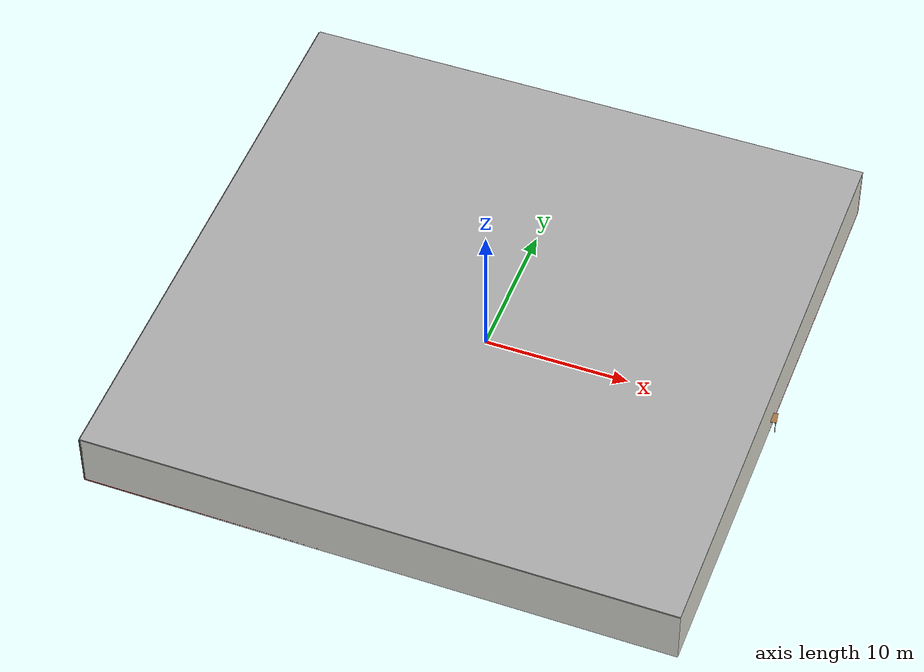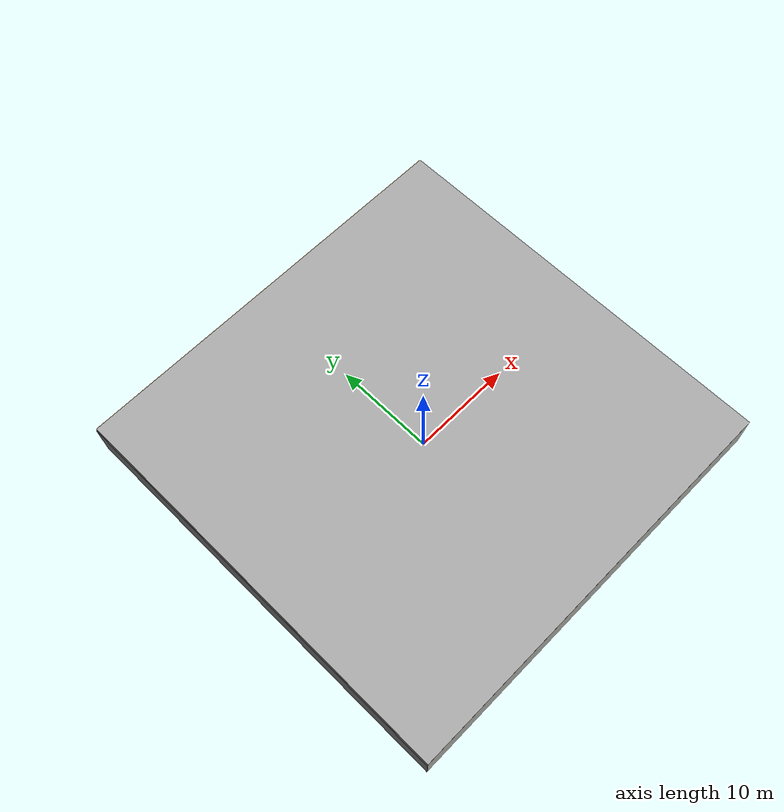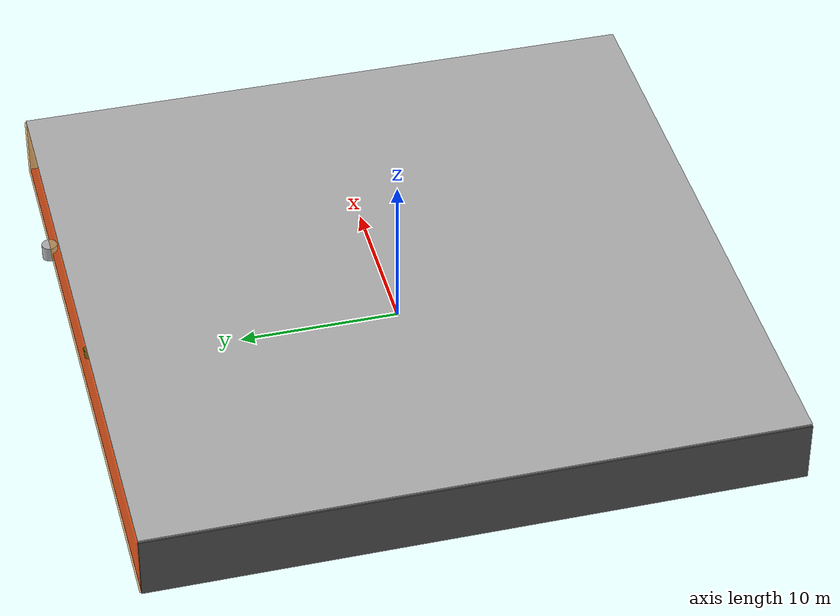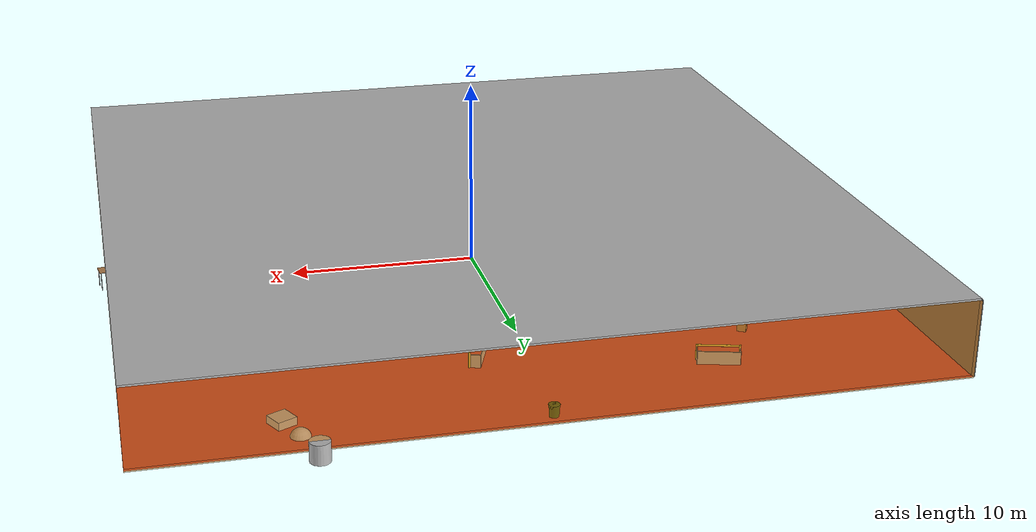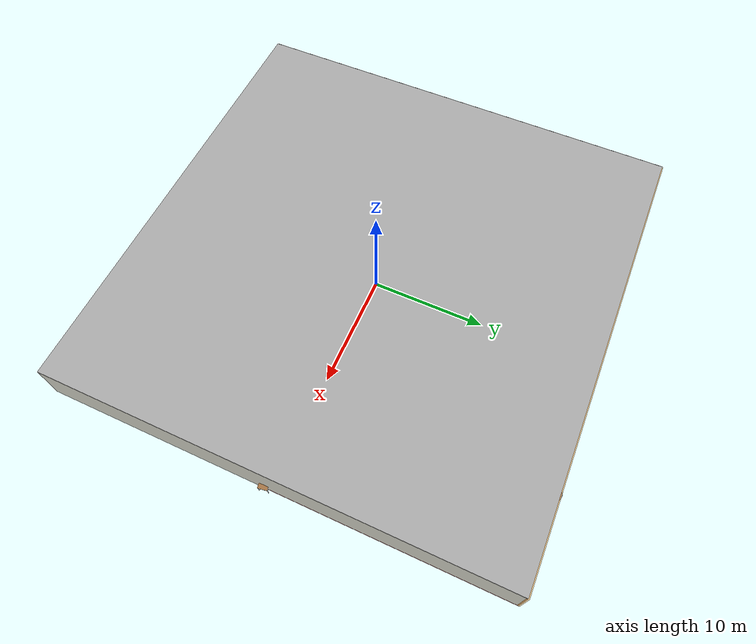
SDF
<sdf version="1.4">
 <world name="default">
  <physics type="ode">
   <max_step_size>0.001</max_step_size>
   <real_time_factor>1</real_time_factor>
   <real_time_update_rate>1000</real_time_update_rate>
   <gravity>0 0 -9.8</gravity>
  </physics>
  <scene><ambient>0.4 0.4 0.4 1</ambient><background>0.7 0.7 0.7 1</background><shadows>1</shadows></scene>
  <model name="Surrounding">
   <static>1</static>
   <link name="Ceiling">
    <collision name="Ceiling_Collision"><geometry><box><size>40 40 0.1</size></box></geometry></collision>
    <visual name="Ceiling_Visual">
     <geometry><box><size>40 40 0.1</size></box></geometry>
     <material>
      <script><uri>file://media/materials/scripts/gazebo.material</uri><name>Gazebo/PioneerBody</name></script>
     </material>
    </visual>
    <pose>0 0 4.05 0 0 0</pose>
   </link>
   <link name="Wall_South">
    <collision name="Wall_South_Collision">
     <geometry><box><size>40 0 4</size></box></geometry>
     <pose>0 0 2 0 -0 0</pose>
    </collision>
    <visual name="Wall_South_Visual">
     <pose>0 0 2 0 -0 0</pose>
     <geometry><box><size>40 0 4</size></box></geometry>
     <material>
      <script><uri>file://media/materials/scripts/gazebo.material</uri><name>Gazebo/CeilingTiled</name></script>
     </material>
    </visual>
    <velocity_decay><linear>0</linear><angular>0</angular></velocity_decay>
    <pose>0 -20 0 0 -0 0</pose>
   </link>
   <link name="Wall_East">
    <collision name="Wall_21_Collision">
     <geometry><box><size>40 0 4</size></box></geometry>
     <pose>0 0 2 0 -0 0</pose>
    </collision>
    <visual name="Wall_21_Visual">
     <pose>0 0 2 0 -0 0</pose>
     <geometry><box><size>40 0 4</size></box></geometry>
     <material>
      <script><uri>file://media/materials/scripts/gazebo.material</uri><name>Gazebo/PaintedWall</name></script>
     </material>
    </visual>
    <velocity_decay><linear>0</linear><angular>0</angular></velocity_decay>
    <pose>20 0 0 0 -0 1.5708</pose>
   </link>
   <link name="Wall_North">
    <collision name="Wall_22_Collision">
     <geometry><box><size>40 0.2 4</size></box></geometry>
     <pose>0 0 2 0 -0 0</pose>
    </collision>
    <visual name="Wall_22_Visual">
     <pose>0 0 2 0 -0 0</pose>
     <geometry><box><size>40 0.2 4</size></box></geometry>
     <material>
      <script>
       <uri>file://media/materials/scripts/gazebo.material</uri>
       <name>Gazebo/OrangeTransparent</name>
      </script>
     </material>
    </visual>
    <velocity_decay><linear>0</linear><angular>0</angular></velocity_decay>
    <pose>0 20 0 0 -0 0</pose>
   </link>
   <link name="Wall_West">
    <collision name="Wall_23_Collision">
     <geometry><box><size>40 0.2 4</size></box></geometry>
     <pose>0 0 2 0 -0 0</pose>
    </collision>
    <visual name="Wall_23_Visual">
     <pose>0 0 2 0 -0 0</pose>
     <geometry><box><size>40 0.2 4</size></box></geometry>
     <material>
      <script><uri>file://media/materials/scripts/gazebo.material</uri><name>Gazebo/Road</name></script>
     </material>
    </visual>
    <velocity_decay><linear>0</linear><angular>0</angular></velocity_decay>
    <pose>-20 0 0 0 0 -1.5708</pose>
   </link>
   <link name="Ground_link">
    <collision name="collision">
     <pose>0 0 .05 0 -0 0</pose>
     <geometry><box><size>40 40 0.1</size></box></geometry>
    </collision>
    <visual name="visual">
     <pose>0 0 .05 0 -0 0</pose>
     <geometry><box><size>40 40 0.1</size></box></geometry>
     <material>
      <script><uri>file://media/materials/scripts/gazebo.material</uri><name>Gazebo/RedBright</name></script>
     </material>
    </visual>
   </link>
   <static>1</static>
  </model>
  <spherical_coordinates>
   <surface_model>EARTH_WGS84</surface_model>
   <latitude_deg>0</latitude_deg>
   <longitude_deg>0</longitude_deg>
   <elevation>0</elevation>
   <heading_deg>0</heading_deg>
  </spherical_coordinates>
  <light name="lightball_0" type="diffuse">
   <diffuse>0.8 0.8 0.8 1</diffuse>
   <specular>0.2 0.2 0.2 1</specular>
   <attenuation>
    <range>100</range>
    <constant>0.7</constant>
    <linear>0.01</linear>
    <quadratic>0.001</quadratic>
   </attenuation>
   <direction>-0.5 0.1 -0.9</direction>
   <pose>6.90302601546 0.268681291076 2.10294904606 0 0 0</pose>
  </light>
  <light name="lightball_1" type="diffuse">
   <diffuse>0.8 0.8 0.8 1</diffuse>
   <specular>0.2 0.2 0.2 1</specular>
   <attenuation>
    <range>100</range>
    <constant>0.7</constant>
    <linear>0.01</linear>
    <quadratic>0.001</quadratic>
   </attenuation>
   <direction>-0.5 0.1 -0.9</direction>
   <pose>18.0675532554 -13.8527912707 2.45104531143 0 0 0</pose>
  </light>
  <light name="lightball_2" type="diffuse">
   <diffuse>0.8 0.8 0.8 1</diffuse>
   <specular>0.2 0.2 0.2 1</specular>
   <attenuation>
    <range>100</range>
    <constant>0.7</constant>
    <linear>0.01</linear>
    <quadratic>0.001</quadratic>
   </attenuation>
   <direction>-0.5 0.1 -0.9</direction>
   <pose>-10.1216145704 5.33745196965 0.794594223808 0 0 0</pose>
  </light>
  <light name="lightball_3" type="diffuse">
   <diffuse>0.8 0.8 0.8 1</diffuse>
   <specular>0.2 0.2 0.2 1</specular>
   <attenuation>
    <range>100</range>
    <constant>0.7</constant>
    <linear>0.01</linear>
    <quadratic>0.001</quadratic>
   </attenuation>
   <direction>-0.5 0.1 -0.9</direction>
   <pose>-5.10056853187 14.0714075193 2.06421126031 0 0 0</pose>
  </light>
  <include>
   <uri>model://textured_shapes</uri>
   <pose>-17.6273782774 -5.43340216499 0 0 0 1.14456175996</pose>
  </include>
  <include><uri>model://cabinet</uri><pose>-11.4259889183 -17.8381955516 0 0 0 1.17141202596</pose></include>
  <include><uri>model://cabinet</uri><pose>-10.3510109013 -8.38585978675 0 0 0 1.56720835756</pose></include>
  <include>
   <uri>model://robocup_3Dsim_goal</uri>
   <pose>-10.8478114854 -2.94415419099 0 0 0 1.85478964729</pose>
  </include>
  <include><uri>model://cabinet</uri><pose>-11.1275075875 12.6096214925 0 0 0 2.63126083555</pose></include>
  <include><uri>model://cabinet</uri><pose>-9.03735682367 -17.1842546276 0 0 0 1.88409635895</pose></include>
  <include><uri>model://table</uri><pose>-8.66377700152 -0.574032934305 0 0 0 1.52514101652</pose></include>
  <include>
   <uri>model://robocup_3Dsim_goal</uri>
   <pose>-8.70523200314 15.6156491218 0 0 0 1.2908593346</pose>
  </include>
  <include><uri>model://cabinet</uri><pose>-5.39964819607 1.53182371967 0 0 0 0.0154920650764</pose></include>
  <include>
   <uri>model://construction_cone</uri>
   <pose>-5.01574363057 3.6656004569 0 0 0 2.3988038471</pose>
  </include>
  <include>
   <uri>model://first_2015_trash_can</uri>
   <pose>0.655273819259 19.4804180351 0 0 0 2.39097271378</pose>
  </include>
  <include>
   <uri>model://first_2015_trash_can</uri>
   <pose>3.83444711945 -18.6964137745 0 0 0 2.56759915423</pose>
  </include>
  <include>
   <uri>model://first_2015_trash_can</uri>
   <pose>4.02740754094 -1.94022697744 0 0 0 2.36725867588</pose>
  </include>
  <include><uri>model://table</uri><pose>3.7089262672 9.37193265248 0 0 0 1.23477088049</pose></include>
  <include>
   <uri>model://robocup_3Dsim_goal</uri>
   <pose>2.91127370841 12.723505101 0 0 0 2.7778035221</pose>
  </include>
  <include>
   <uri>model://first_2015_trash_can</uri>
   <pose>10.6763732516 -14.656851464 0 0 0 2.58550364697</pose>
  </include>
  <include><uri>model://cabinet</uri><pose>9.89362429812 -6.69949835405 0 0 0 0.323433682492</pose></include>
  <include><uri>model://cabinet</uri><pose>13.0155854966 -2.92849488834 0 0 0 0.323305189479</pose></include>
  <include><uri>model://cabinet</uri><pose>12.2579462944 1.59613254094 0 0 0 1.01055414885</pose></include>
  <include>
   <uri>model://textured_shapes</uri>
   <pose>12.1653709772 18.7624057919 0 0 0 0.463122305695</pose>
  </include>
  <include><uri>model://cabinet</uri><pose>19.672492148 -18.0867366941 0 0 0 2.14816455318</pose></include>
  <include><uri>model://table</uri><pose>19.6162911638 -0.509696823986 0 0 0 0.150621681691</pose></include>
 </world>
</sdf>

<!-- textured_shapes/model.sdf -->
<sdf version="1.6">
  <model name="textured_shapes">
    <pose>0 0 0.5 0 0 0</pose>
    <link name="box">
      <pose>0 -1.5 0 0 0 0</pose>
      <collision name="collision">
        <geometry>
          <box>
            <size>1 1 1</size>
          </box>
        </geometry>
      </collision>
      <visual name="visual">
        <geometry>
          <box>
            <size>1 1 1</size>
          </box>
        </geometry>
        <material>
          <script>
            <uri>model://../model_source/models/textured_shapes/materials/scripts</uri>
            <uri>model://../model_source/models/textured_shapes/materials/textures</uri>
            <name>TexturedShape/Squares</name>
          </script>
        </material>
      </visual>
    </link>
    <link name="sphere">
      <collision name="collision">
        <geometry>
          <sphere>
            <radius>0.5</radius>
          </sphere>
        </geometry>
      </collision>
      <visual name="visual">
        <geometry>
          <sphere>
            <radius>0.5</radius>
          </sphere>
        </geometry>
        <material>
          <script>
            <uri>model://../model_source/models/textured_shapes/materials/scripts</uri>
            <uri>model://../model_source/models/textured_shapes/materials/textures</uri>
            <name>TexturedShape/Squares</name>
          </script>
        </material>
      </visual>
    </link>
    <link name="cylinder">
      <pose>0 1.5 0 0 0 0</pose>
      <collision name="collision">
        <geometry>
          <cylinder>
            <radius>0.5</radius>
            <length>1</length>
          </cylinder>
        </geometry>
      </collision>
      <visual name="visual">
        <geometry>
          <cylinder>
            <radius>0.5</radius>
            <length>1</length>
          </cylinder>
        </geometry>
        <material>
          <script>
            <uri>model://../model_source/models/textured_shapes/materials/scripts</uri>
            <uri>model://../model_source/models/textured_shapes/materials/textures</uri>
            <name>TexturedShape/Squares</name>
          </script>
        </material>
      </visual>
    </link>
  </model>
</sdf>

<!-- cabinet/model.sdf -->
<sdf version="1.5">
  <model name="cabinet">
    <static>true</static>
    <link name="cabinet_bottom_plate">
      <inertial>
        <pose>0 0 -1 0 0 0</pose>
        <inertia>
          <ixx>2.050000</ixx>
          <ixy>0</ixy>
          <ixz>0</ixz>
          <iyy>2.050000</iyy>
          <iyz>0</iyz>
          <izz>2.050000</izz>
        </inertia>
        <mass>25.000000</mass>
      </inertial>
      <collision name="cabinet_bottom_plate_geom">
        <pose>0 0 0.010000 0 0 0</pose>
        <geometry>
          <box>
            <size>0.450000 0.450000 0.020000</size>
          </box>
        </geometry>
      </collision>
      <visual name="cabinet_bottom_plate_geom_visual">
        <pose>0 0 0.010000 0 0 0</pose>
        <geometry>
          <box>
            <size>0.450000 0.450000 0.020000</size>
          </box>
        </geometry>
        <material>
          <script>
            <uri>model://media/materials/scripts/gazebo.material</uri>
            <name>Gazebo/Wood</name>
          </script>
        </material>
      </visual>
      <collision name="cabinet_bottom_plate_geom_cabinet_back_plate">
        <pose>0.235000 0 0.510000 0 0 0</pose>
        <geometry>
          <box>
            <size>0.020000 0.450000 1.020000</size>
          </box>
        </geometry>
      </collision>
      <visual name="cabinet_bottom_plate_geom_cabinet_back_plate_visual">
        <pose>0.235000 0 0.510000 0 0 0</pose>
        <geometry>
          <box>
            <size>0.020000 0.450000 1.020000</size>
          </box>
        </geometry>
        <material>
          <script>
            <uri>model://media/materials/scripts/gazebo.material</uri>
            <name>Gazebo/Wood</name>
          </script>
        </material>
      </visual>
      <collision name="cabinet_bottom_plate_geom_cabinet_left_plate">
        <pose>0 0.235000 0.510000 0 0 0</pose>
        <geometry>
          <box>
            <size>0.450000 0.020000 1.020000</size>
          </box>
        </geometry>
      </collision>
      <visual name="cabinet_bottom_plate_geom_cabinet_left_plate_visual">
        <pose>0 0.235000 0.510000 0 0 0</pose>
        <geometry>
          <box>
            <size>0.450000 0.020000 1.020000</size>
          </box>
        </geometry>
        <material>
          <script>
            <uri>model://media/materials/scripts/gazebo.material</uri>
            <name>Gazebo/Wood</name>
          </script>
        </material>
      </visual>
      <collision name="cabinet_bottom_plate_geom_cabinet_middle_plate">
        <pose>0 0 0.510000 0 0 0</pose>
        <geometry>
          <box>
            <size>0.450000 0.450000 0.020000</size>
          </box>
        </geometry>
      </collision>
      <visual name="cabinet_bottom_plate_geom_cabinet_middle_plate_visual">
        <pose>0 0 0.510000 0 0 0</pose>
        <geometry>
          <box>
            <size>0.450000 0.450000 0.020000</size>
          </box>
        </geometry>
        <material>
          <script>
            <uri>model://media/materials/scripts/gazebo.material</uri>
            <name>Gazebo/Wood</name>
          </script>
        </material>
      </visual>
      <collision name="cabinet_bottom_plate_geom_cabinet_right_plate">
        <pose>0 -0.235000 0.510000 0 0 0</pose>
        <geometry>
          <box>
            <size>0.450000 0.020000 1.020000</size>
          </box>
        </geometry>
      </collision>
      <visual name="cabinet_bottom_plate_geom_cabinet_right_plate_visual">
        <pose>0 -0.235000 0.510000 0 0 0</pose>
        <geometry>
          <box>
            <size>0.450000 0.020000 1.020000</size>
          </box>
        </geometry>
        <material>
          <script>
            <uri>model://media/materials/scripts/gazebo.material</uri>
            <name>Gazebo/Wood</name>
          </script>
        </material>
      </visual>
      <collision name="cabinet_bottom_plate_geom_cabinet_top_plate">
        <pose>0 0 1.010000 0 0 0</pose>
        <geometry>
          <box>
            <size>0.450000 0.450000 0.020000</size>
          </box>
        </geometry>
      </collision>
      <visual name="cabinet_bottom_plate_geom_cabinet_top_plate_visual">
        <pose>0 0 1.010000 0 0 0</pose>
        <geometry>
          <box>
            <size>0.450000 0.450000 0.020000</size>
          </box>
        </geometry>
        <material>
          <script>
            <uri>model://media/materials/scripts/gazebo.material</uri>
            <name>Gazebo/Wood</name>
          </script>
        </material>
      </visual>
    </link>
  </model>
</sdf>

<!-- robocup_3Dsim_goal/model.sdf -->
<sdf version="1.5">
  <model name="robocup_3d_goal">
    <static>true</static>
    <link name="left_post">
      <pose>0 1.05 0.45 0 0 0</pose>
      <collision name="collision">
        <geometry>
          <cylinder>
            <radius>0.05</radius>
            <length>0.9</length>
          </cylinder>
        </geometry>
      </collision>
      <visual name="visual">
        <geometry>
          <cylinder>
            <radius>0.05</radius>
            <length>0.9</length>
          </cylinder>
        </geometry>
        <material>
          <script>
            <uri>file://media/materials/scripts/gazebo.material</uri>
            <name>Gazebo/ZincYellow</name>
          </script>
        </material>
      </visual>
    </link>
    <link name="left_support_horiz_lower">
      <pose>0.30 1.05 0.01 0 0 0</pose>
      <collision name="collision">
        <geometry>
          <box>
            <size>0.50 0.02 0.02</size>
          </box>
        </geometry>
      </collision>
      <visual name="visual">
        <geometry>
          <box>
            <size>0.50 0.02 0.02</size>
          </box>
        </geometry>
        <material>
          <script>
            <uri>file://media/materials/scripts/gazebo.material</uri>
            <name>Gazebo/White</name>
          </script>
        </material>
      </visual>
    </link>
    <link name="left_support_horiz_upper">
      <pose>0.30 1.05 0.79 0 0 0</pose>
      <collision name="collision">
        <geometry>
          <box>
            <size>0.50 0.02 0.02</size>
          </box>
        </geometry>
      </collision>
      <visual name="visual">
        <geometry>
          <box>
            <size>0.50 0.02 0.02</size>
          </box>
        </geometry>
        <material>
          <script>
            <uri>file://media/materials/scripts/gazebo.material</uri>
            <name>Gazebo/White</name>
          </script>
        </material>
      </visual>
    </link>
    <link name="left_support_vertical">
      <pose>0.56 1.05 0.4 0 1.5708 0</pose>
      <collision name="collision">
        <geometry>
          <box>
            <size>0.80 0.02 0.02</size>
          </box>
        </geometry>
      </collision>
      <visual name="visual">
        <geometry>
          <box>
            <size>0.80 0.02 0.02</size>
          </box>
        </geometry>
        <material>
          <script>
            <uri>file://media/materials/scripts/gazebo.material</uri>
            <name>Gazebo/White</name>
          </script>
        </material>
      </visual>
    </link>
    <link name="right_support_horiz_lower">
      <pose>0.30 -1.05 0.01 0 0 0</pose>
      <collision name="collision">
        <geometry>
          <box>
            <size>0.50 0.02 0.02</size>
          </box>
        </geometry>
      </collision>
      <visual name="visual">
        <geometry>
          <box>
            <size>0.50 0.02 0.02</size>
          </box>
        </geometry>
        <material>
          <script>
            <uri>file://media/materials/scripts/gazebo.material</uri>
            <name>Gazebo/White</name>
          </script>
        </material>
      </visual>
    </link>
    <link name="right_support_horiz_upper">
      <pose>0.30 -1.05 0.79 0 0 0</pose>
      <collision name="collision">
        <geometry>
          <box>
            <size>0.50 0.02 0.02</size>
          </box>
        </geometry>
      </collision>
      <visual name="visual">
        <geometry>
          <box>
            <size>0.50 0.02 0.02</size>
          </box>
        </geometry>
        <material>
          <script>
            <uri>file://media/materials/scripts/gazebo.material</uri>
            <name>Gazebo/White</name>
          </script>
        </material>
      </visual>
    </link>
    <link name="right_support_vertical">
      <pose>0.56 -1.05 0.4 0 1.5708 0</pose>
      <collision name="collision">
        <geometry>
          <box>
            <size>0.80 0.02 0.02</size>
          </box>
        </geometry>
      </collision>
      <visual name="visual">
        <geometry>
          <box>
            <size>0.80 0.02 0.02</size>
          </box>
        </geometry>
        <material>
          <script>
            <uri>file://media/materials/scripts/gazebo.material</uri>
            <name>Gazebo/White</name>
          </script>
        </material>
      </visual>
    </link>
    <link name="center_support_horiz_lower">
      <pose>0.56 0 0.01 0 1.5708 0</pose>
      <collision name="collision">
        <geometry>
          <box>
            <size>0.02 2.08 0.02</size>
          </box>
        </geometry>
      </collision>
      <visual name="visual">
        <geometry>
          <box>
            <size>0.02 2.08 0.02</size>
          </box>
        </geometry>
        <material>
          <script>
            <uri>file://media/materials/scripts/gazebo.material</uri>
            <name>Gazebo/White</name>
          </script>
        </material>
      </visual>
    </link>
    <link name="center_support_horiz_upper">
      <pose>0.56 0 0.79 0 1.5708 0</pose>
      <collision name="collision">
        <geometry>
          <box>
            <size>0.02 2.08 0.02</size>
          </box>
        </geometry>
      </collision>
      <visual name="visual">
        <geometry>
          <box>
            <size>0.02 2.08 0.02</size>
          </box>
        </geometry>
        <material>
          <script>
            <uri>file://media/materials/scripts/gazebo.material</uri>
            <name>Gazebo/White</name>
          </script>
        </material>
      </visual>
    </link>
    <link name="right_post">
      <pose>0 -1.05 0.45 0 0 0</pose>
      <collision name="collision">
        <geometry>
          <cylinder>
            <radius>0.05</radius>
            <length>0.9</length>
          </cylinder>
        </geometry>
      </collision>
      <visual name="visual">
        <geometry>
          <cylinder>
            <radius>0.05</radius>
            <length>0.9</length>
          </cylinder>
        </geometry>
        <material>
          <script>
            <uri>file://media/materials/scripts/gazebo.material</uri>
            <name>Gazebo/ZincYellow</name>
          </script>
        </material>
      </visual>
    </link>
    <link name="crossbar">
      <pose>0 0 0.85 1.57 1.57 0</pose>
      <collision name="collision">
        <geometry>
          <cylinder>
            <radius>0.05</radius>
            <length>2.0</length>
          </cylinder>
        </geometry>
      </collision>
      <visual name="visual">
        <geometry>
          <cylinder>
            <radius>0.05</radius>
            <length>2.0</length>
          </cylinder>
        </geometry>
        <material>
          <script>
            <uri>file://media/materials/scripts/gazebo.material</uri>
            <name>Gazebo/ZincYellow</name>
          </script>
        </material>
      </visual>
    </link>
    <link name="center_net">
      <pose>0.56 0 0.40 0 0 0</pose>
      <collision name="collision">
        <geometry>
          <box>
            <size>0.01 2.1 0.80</size>
          </box>
        </geometry>
      </collision>
      <visual name="visual">
        <geometry>
          <box>
            <size>0.01 2.1 0.80</size>
          </box>
        </geometry>
        <material>
          <script>
            <uri>model://../model_source/models/robocup09_spl_field/materials/scripts/</uri>
            <uri>model://../model_source/models/robocup09_spl_field/materials/textures/</uri>
            <name>RoboCup/Net</name>
          </script>
        </material>
      </visual>
    </link>
    <link name="left_net">
      <pose>0.30 1.05 0.40 0 0 0</pose>
      <collision name="collision">
        <geometry>
          <box>
            <size>0.50 0.01 0.76</size>
          </box>
        </geometry>
      </collision>
      <visual name="visual">
        <geometry>
          <box>
            <size>0.50 0.01 0.76</size>
          </box>
        </geometry>
        <material>
          <script>
            <uri>model://../model_source/models/robocup09_spl_field/materials/scripts/</uri>
            <uri>model://../model_source/models/robocup09_spl_field/materials/textures/</uri>
            <name>RoboCup/Net</name>
          </script>
        </material>
      </visual>
    </link>
    <link name="right_net">
      <pose>0.30 -1.05 0.40 0 0 0</pose>
      <collision name="collision">
        <geometry>
          <box>
            <size>0.50 0.01 0.76</size>
          </box>
        </geometry>
      </collision>
      <visual name="visual">
        <geometry>
          <box>
            <size>0.50 0.01 0.76</size>
          </box>
        </geometry>
        <material>
          <script>
            <uri>model://../model_source/models/robocup09_spl_field/materials/scripts/</uri>
            <uri>model://../model_source/models/robocup09_spl_field/materials/textures/</uri>
            <name>RoboCup/Net</name>
          </script>
        </material>
      </visual>
    </link>
  </model>
</sdf>

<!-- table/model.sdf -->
<sdf version="1.5">
  <model name="table">
    <static>true</static>
    <link name="link">
      <collision name="surface">
        <pose>0 0 1.0 0 0 0</pose>
        <geometry>
          <box>
            <size>1.5 0.8 0.03</size>
          </box>
        </geometry>
        <surface>
          <friction>
            <ode>
              <mu>0.6</mu>
              <mu2>0.6</mu2>
            </ode>
          </friction>
        </surface>
      </collision>
      <visual name="visual1">
        <pose>0 0 1.0 0 0 0</pose>
        <geometry>
          <box>
            <size>1.5 0.8 0.03</size>
          </box>
        </geometry>
        <material>
          <script>
            <uri>model://media/materials/scripts/gazebo.material</uri>
            <name>Gazebo/Wood</name>
          </script>
        </material>
      </visual>
      <collision name="front_left_leg">
        <pose>0.68 0.38 0.5 0 0 0</pose>
        <geometry>
          <cylinder>
            <radius>0.02</radius>
            <length>1.0</length>
          </cylinder>
        </geometry>
      </collision>
      <visual name="front_left_leg">
        <pose>0.68 0.38 0.5 0 0 0</pose>
        <geometry>
          <cylinder>
            <radius>0.02</radius>
            <length>1.0</length>
          </cylinder>
        </geometry>
        <material>
          <script>
            <uri>model://media/materials/scripts/gazebo.material</uri>
            <name>Gazebo/Grey</name>
          </script>
        </material>
      </visual>
      <collision name="front_right_leg">
        <pose>0.68 -0.38 0.5 0 0 0</pose>
        <geometry>
          <cylinder>
            <radius>0.02</radius>
            <length>1.0</length>
          </cylinder>
        </geometry>
      </collision>
      <visual name="front_right_leg">
        <pose>0.68 -0.38 0.5 0 0 0</pose>
        <geometry>
          <cylinder>
            <radius>0.02</radius>
            <length>1.0</length>
          </cylinder>
        </geometry>
        <material>
          <script>
            <uri>model://media/materials/scripts/gazebo.material</uri>
            <name>Gazebo/Grey</name>
          </script>
        </material>
      </visual>
      <collision name="back_right_leg">
        <pose>-0.68 -0.38 0.5 0 0 0</pose>
        <geometry>
          <cylinder>
            <radius>0.02</radius>
            <length>1.0</length>
          </cylinder>
        </geometry>
      </collision>
      <visual name="back_right_leg">
        <pose>-0.68 -0.38 0.5 0 0 0</pose>
        <geometry>
          <cylinder>
            <radius>0.02</radius>
            <length>1.0</length>
          </cylinder>
        </geometry>
        <material>
          <script>
            <uri>model://media/materials/scripts/gazebo.material</uri>
            <name>Gazebo/Grey</name>
          </script>
        </material>
      </visual>
      <collision name="back_left_leg">
        <pose>-0.68 0.38 0.5 0 0 0</pose>
        <geometry>
          <cylinder>
            <radius>0.02</radius>
            <length>1.0</length>
          </cylinder>
        </geometry>
      </collision>
      <visual name="back_left_leg">
        <pose>-0.68 0.38 0.5 0 0 0</pose>
        <geometry>
          <cylinder>
            <radius>0.02</radius>
            <length>1.0</length>
          </cylinder>
        </geometry>
        <material>
          <script>
            <uri>model://media/materials/scripts/gazebo.material</uri>
            <name>Gazebo/Grey</name>
          </script>
        </material>
      </visual>
    </link>
  </model>
</sdf>

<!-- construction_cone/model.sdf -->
<sdf version="1.5">
  <model name="Construction Cone">
    <link name="link">
      <collision name="collision">
        <geometry>
          <mesh>
            <scale>10 10 10</scale>
            <uri>file://isr-testbed/construction_cone/meshes/construction_cone.dae</uri>
          </mesh>
        </geometry>
      </collision>
      <visual name="visual">
        <geometry>
          <mesh>
            <scale>10 10 10</scale>
            <uri>file://isr-testbed/construction_cone/meshes/construction_cone.dae</uri>
          </mesh>
        </geometry>
      </visual>
    </link>
  </model>
</sdf>

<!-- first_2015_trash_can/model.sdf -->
<sdf version="1.5">
  <model name="first_2015_trash_can">
    <link name="link">
      <inertial>
        <pose>0 0 0.3683 0 0 0</pose>
        <mass>4.83076</mass>
        <inertia>
          <ixx>0.281534052</ixx>
          <ixy>0</ixy>
          <ixz>0</ixz>
          <iyy>0.281534052</iyy>
          <iyz>0</iyz>
          <izz>0.126222831</izz>
        </inertia>
      </inertial>

      <visual name="visual">
        <geometry>
          <mesh>
            <uri>model://first_2015_trash_can/meshes/trash_can.dae</uri>
          </mesh>
        </geometry>
      </visual>

      <collision name="collision">
        <geometry>
          <mesh>
            <uri>model://first_2015_trash_can/meshes/trash_can.dae</uri>
          </mesh>
        </geometry>
      </collision>
    </link>
  </model>
</sdf>
